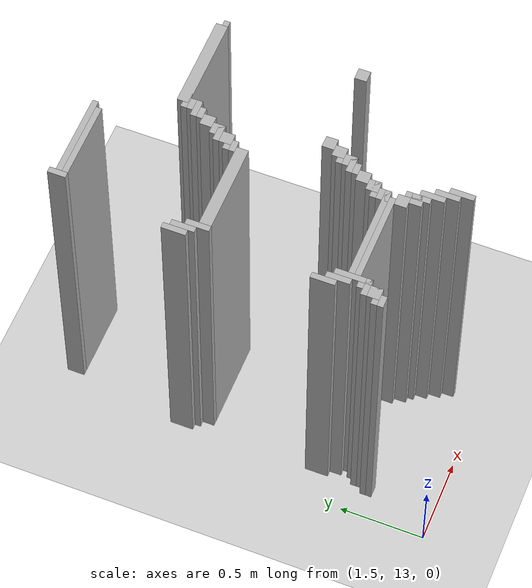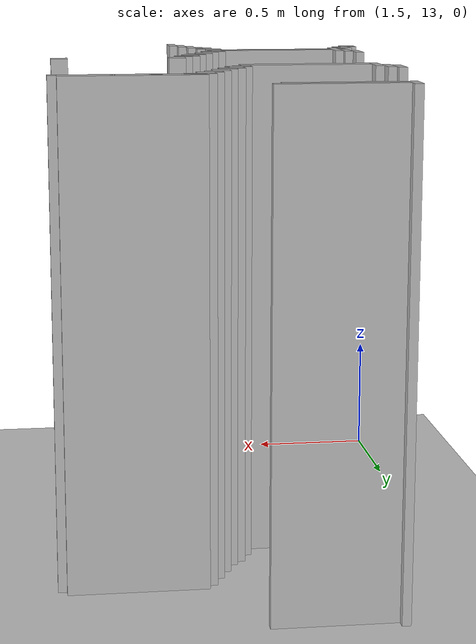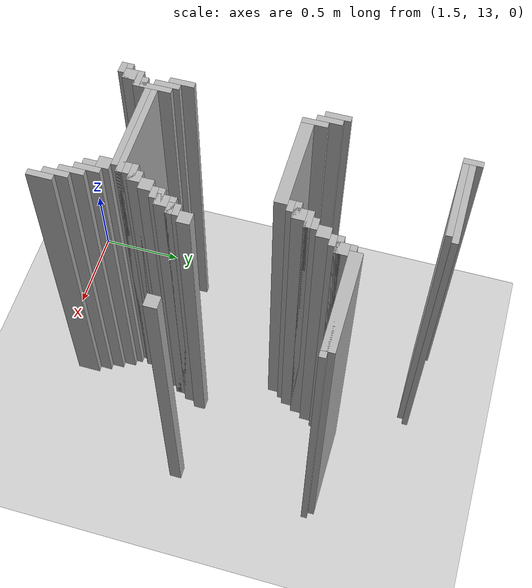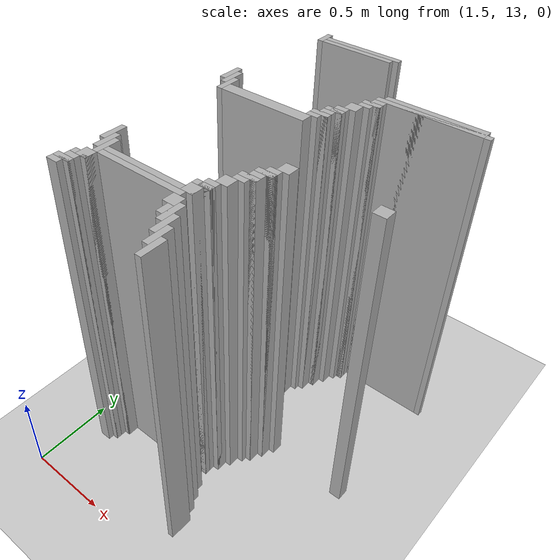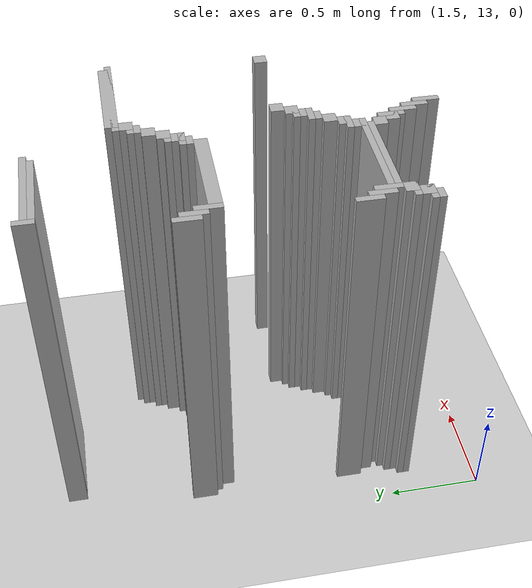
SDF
<sdf version="1.6">
 <world name="slam_world">
  <model name="ground_plane">
   <static>true</static>
   <link name="link">
    <collision name="collision">
     <geometry><plane><normal>0 0 1</normal><size>100 100</size></plane></geometry>
    </collision>
    <visual name="visual">
     <geometry><plane><normal>0 0 1</normal><size>100 100</size></plane></geometry>
     <material>
      <ambient>0.8 0.8 0.8 1</ambient>
      <diffuse>0.8 0.8 0.8 1</diffuse>
      <specular>0.8 0.8 0.8 1</specular>
     </material>
    </visual>
   </link>
  </model>
  <model name="wall_709">
   <static>true</static>
   <pose>1.7923433874709975 15.261020881670532 1.0 0 0 0</pose>
   <link name="link">
    <collision name="collision">
     <geometry><box><size>0.03480278422273782 0.10440835266821345 2.0</size></box></geometry>
    </collision>
    <visual name="visual">
     <geometry><box><size>0.03480278422273782 0.10440835266821345 2.0</size></box></geometry>
     <material><ambient>0.5 0.5 0.5 1</ambient><diffuse>0.7 0.7 0.7 1</diffuse></material>
    </visual>
   </link>
  </model>
  <model name="wall_724">
   <static>true</static>
   <pose>2.053364269141531 15.261020881670532 1.0 0 0 0</pose>
   <link name="link">
    <collision name="collision">
     <geometry><box><size>0.4872389791183295 0.03480278422273782 2.0</size></box></geometry>
    </collision>
    <visual name="visual">
     <geometry><box><size>0.4872389791183295 0.03480278422273782 2.0</size></box></geometry>
     <material><ambient>0.5 0.5 0.5 1</ambient><diffuse>0.7 0.7 0.7 1</diffuse></material>
    </visual>
   </link>
  </model>
  <model name="wall_734">
   <static>true</static>
   <pose>2.0359628770301623 15.226218097447795 1.0 0 0 0</pose>
   <link name="link">
    <collision name="collision">
     <geometry><box><size>0.4524361948955916 0.03480278422273782 2.0</size></box></geometry>
    </collision>
    <visual name="visual">
     <geometry><box><size>0.4524361948955916 0.03480278422273782 2.0</size></box></geometry>
     <material><ambient>0.5 0.5 0.5 1</ambient><diffuse>0.7 0.7 0.7 1</diffuse></material>
    </visual>
   </link>
  </model>
  <model name="wall_858">
   <static>true</static>
   <pose>2.7494199535962878 14.825986078886311 1.0 0 0 0</pose>
   <link name="link">
    <collision name="collision">
     <geometry><box><size>0.5568445475638051 0.06960556844547564 2.0</size></box></geometry>
    </collision>
    <visual name="visual">
     <geometry><box><size>0.5568445475638051 0.06960556844547564 2.0</size></box></geometry>
     <material><ambient>0.5 0.5 0.5 1</ambient><diffuse>0.7 0.7 0.7 1</diffuse></material>
    </visual>
   </link>
  </model>
  <model name="wall_872">
   <static>true</static>
   <pose>2.7494199535962878 14.80858468677494 1.0 0 0 0</pose>
   <link name="link">
    <collision name="collision">
     <geometry><box><size>0.6264501160092807 0.03480278422273782 2.0</size></box></geometry>
    </collision>
    <visual name="visual">
     <geometry><box><size>0.6264501160092807 0.03480278422273782 2.0</size></box></geometry>
     <material><ambient>0.5 0.5 0.5 1</ambient><diffuse>0.7 0.7 0.7 1</diffuse></material>
    </visual>
   </link>
  </model>
  <model name="wall_884">
   <static>true</static>
   <pose>2.470997679814385 14.756380510440835 1.0 0 0 0</pose>
   <link name="link">
    <collision name="collision">
     <geometry><box><size>0.06960556844547564 0.06960556844547564 2.0</size></box></geometry>
    </collision>
    <visual name="visual">
     <geometry><box><size>0.06960556844547564 0.06960556844547564 2.0</size></box></geometry>
     <material><ambient>0.5 0.5 0.5 1</ambient><diffuse>0.7 0.7 0.7 1</diffuse></material>
    </visual>
   </link>
  </model>
  <model name="wall_900">
   <static>true</static>
   <pose>2.453596287703016 14.738979118329466 1.0 0 0 0</pose>
   <link name="link">
    <collision name="collision">
     <geometry><box><size>0.10440835266821345 0.03480278422273782 2.0</size></box></geometry>
    </collision>
    <visual name="visual">
     <geometry><box><size>0.10440835266821345 0.03480278422273782 2.0</size></box></geometry>
     <material><ambient>0.5 0.5 0.5 1</ambient><diffuse>0.7 0.7 0.7 1</diffuse></material>
    </visual>
   </link>
  </model>
  <model name="wall_914">
   <static>true</static>
   <pose>2.436194895591647 14.704176334106728 1.0 0 0 0</pose>
   <link name="link">
    <collision name="collision">
     <geometry><box><size>0.06960556844547564 0.03480278422273782 2.0</size></box></geometry>
    </collision>
    <visual name="visual">
     <geometry><box><size>0.06960556844547564 0.03480278422273782 2.0</size></box></geometry>
     <material><ambient>0.5 0.5 0.5 1</ambient><diffuse>0.7 0.7 0.7 1</diffuse></material>
    </visual>
   </link>
  </model>
  <model name="wall_927">
   <static>true</static>
   <pose>2.4013921113689096 14.65197215777262 1.0 0 0 0</pose>
   <link name="link">
    <collision name="collision">
     <geometry><box><size>0.06960556844547564 0.06960556844547564 2.0</size></box></geometry>
    </collision>
    <visual name="visual">
     <geometry><box><size>0.06960556844547564 0.06960556844547564 2.0</size></box></geometry>
     <material><ambient>0.5 0.5 0.5 1</ambient><diffuse>0.7 0.7 0.7 1</diffuse></material>
    </visual>
   </link>
  </model>
  <model name="wall_942">
   <static>true</static>
   <pose>1.6879350348027842 14.547563805104408 1.0 0 0 0</pose>
   <link name="link">
    <collision name="collision">
     <geometry><box><size>0.03480278422273782 0.13921113689095127 2.0</size></box></geometry>
    </collision>
    <visual name="visual">
     <geometry><box><size>0.03480278422273782 0.13921113689095127 2.0</size></box></geometry>
     <material><ambient>0.5 0.5 0.5 1</ambient><diffuse>0.7 0.7 0.7 1</diffuse></material>
    </visual>
   </link>
  </model>
  <model name="wall_943">
   <static>true</static>
   <pose>2.3665893271461718 14.582366589327146 1.0 0 0 0</pose>
   <link name="link">
    <collision name="collision">
     <geometry><box><size>0.06960556844547564 0.06960556844547564 2.0</size></box></geometry>
    </collision>
    <visual name="visual">
     <geometry><box><size>0.06960556844547564 0.06960556844547564 2.0</size></box></geometry>
     <material><ambient>0.5 0.5 0.5 1</ambient><diffuse>0.7 0.7 0.7 1</diffuse></material>
    </visual>
   </link>
  </model>
  <model name="wall_958">
   <static>true</static>
   <pose>1.722737819025522 14.512761020881669 1.0 0 0 0</pose>
   <link name="link">
    <collision name="collision">
     <geometry><box><size>0.03480278422273782 0.13921113689095127 2.0</size></box></geometry>
    </collision>
    <visual name="visual">
     <geometry><box><size>0.03480278422273782 0.13921113689095127 2.0</size></box></geometry>
     <material><ambient>0.5 0.5 0.5 1</ambient><diffuse>0.7 0.7 0.7 1</diffuse></material>
    </visual>
   </link>
  </model>
  <model name="wall_959">
   <static>true</static>
   <pose>2.3491879350348026 14.564965197215777 1.0 0 0 0</pose>
   <link name="link">
    <collision name="collision">
     <geometry><box><size>0.10440835266821345 0.03480278422273782 2.0</size></box></geometry>
    </collision>
    <visual name="visual">
     <geometry><box><size>0.10440835266821345 0.03480278422273782 2.0</size></box></geometry>
     <material><ambient>0.5 0.5 0.5 1</ambient><diffuse>0.7 0.7 0.7 1</diffuse></material>
    </visual>
   </link>
  </model>
  <model name="wall_973">
   <static>true</static>
   <pose>2.331786542923434 14.512761020881669 1.0 0 0 0</pose>
   <link name="link">
    <collision name="collision">
     <geometry><box><size>0.06960556844547564 0.06960556844547564 2.0</size></box></geometry>
    </collision>
    <visual name="visual">
     <geometry><box><size>0.06960556844547564 0.06960556844547564 2.0</size></box></geometry>
     <material><ambient>0.5 0.5 0.5 1</ambient><diffuse>0.7 0.7 0.7 1</diffuse></material>
    </visual>
   </link>
  </model>
  <model name="wall_981">
   <static>true</static>
   <pose>1.75754060324826 14.443155452436194 1.0 0 0 0</pose>
   <link name="link">
    <collision name="collision">
     <geometry><box><size>0.03480278422273782 0.13921113689095127 2.0</size></box></geometry>
    </collision>
    <visual name="visual">
     <geometry><box><size>0.03480278422273782 0.13921113689095127 2.0</size></box></geometry>
     <material><ambient>0.5 0.5 0.5 1</ambient><diffuse>0.7 0.7 0.7 1</diffuse></material>
    </visual>
   </link>
  </model>
  <model name="wall_982">
   <static>true</static>
   <pose>2.3143851508120648 14.4953596287703 1.0 0 0 0</pose>
   <link name="link">
    <collision name="collision">
     <geometry><box><size>0.10440835266821345 0.03480278422273782 2.0</size></box></geometry>
    </collision>
    <visual name="visual">
     <geometry><box><size>0.10440835266821345 0.03480278422273782 2.0</size></box></geometry>
     <material><ambient>0.5 0.5 0.5 1</ambient><diffuse>0.7 0.7 0.7 1</diffuse></material>
    </visual>
   </link>
  </model>
  <model name="wall_996">
   <static>true</static>
   <pose>2.296983758700696 14.460556844547563 1.0 0 0 0</pose>
   <link name="link">
    <collision name="collision">
     <geometry><box><size>0.06960556844547564 0.03480278422273782 2.0</size></box></geometry>
    </collision>
    <visual name="visual">
     <geometry><box><size>0.06960556844547564 0.03480278422273782 2.0</size></box></geometry>
     <material><ambient>0.5 0.5 0.5 1</ambient><diffuse>0.7 0.7 0.7 1</diffuse></material>
    </visual>
   </link>
  </model>
  <model name="wall_1005">
   <static>true</static>
   <pose>2.0359628770301623 14.408352668213457 1.0 0 0 0</pose>
   <link name="link">
    <collision name="collision">
     <geometry><box><size>0.5220417633410672 0.06960556844547564 2.0</size></box></geometry>
    </collision>
    <visual name="visual">
     <geometry><box><size>0.5220417633410672 0.06960556844547564 2.0</size></box></geometry>
     <material><ambient>0.5 0.5 0.5 1</ambient><diffuse>0.7 0.7 0.7 1</diffuse></material>
    </visual>
   </link>
  </model>
  <model name="wall_1126">
   <static>true</static>
   <pose>2.5058004640371228 13.990719257540603 1.0 0 0 0</pose>
   <link name="link">
    <collision name="collision">
     <geometry><box><size>0.06960556844547564 0.06960556844547564 2.0</size></box></geometry>
    </collision>
    <visual name="visual">
     <geometry><box><size>0.06960556844547564 0.06960556844547564 2.0</size></box></geometry>
     <material><ambient>0.5 0.5 0.5 1</ambient><diffuse>0.7 0.7 0.7 1</diffuse></material>
    </visual>
   </link>
  </model>
  <model name="wall_1127">
   <static>true</static>
   <pose>2.9930394431554523 13.990719257540603 1.0 0 0 0</pose>
   <link name="link">
    <collision name="collision">
     <geometry><box><size>0.06960556844547564 0.06960556844547564 2.0</size></box></geometry>
    </collision>
    <visual name="visual">
     <geometry><box><size>0.06960556844547564 0.06960556844547564 2.0</size></box></geometry>
     <material><ambient>0.5 0.5 0.5 1</ambient><diffuse>0.7 0.7 0.7 1</diffuse></material>
    </visual>
   </link>
  </model>
  <model name="wall_1140">
   <static>true</static>
   <pose>2.470997679814385 13.921113689095128 1.0 0 0 0</pose>
   <link name="link">
    <collision name="collision">
     <geometry><box><size>0.06960556844547564 0.06960556844547564 2.0</size></box></geometry>
    </collision>
    <visual name="visual">
     <geometry><box><size>0.06960556844547564 0.06960556844547564 2.0</size></box></geometry>
     <material><ambient>0.5 0.5 0.5 1</ambient><diffuse>0.7 0.7 0.7 1</diffuse></material>
    </visual>
   </link>
  </model>
  <model name="wall_1157">
   <static>true</static>
   <pose>2.453596287703016 13.903712296983759 1.0 0 0 0</pose>
   <link name="link">
    <collision name="collision">
     <geometry><box><size>0.10440835266821345 0.03480278422273782 2.0</size></box></geometry>
    </collision>
    <visual name="visual">
     <geometry><box><size>0.10440835266821345 0.03480278422273782 2.0</size></box></geometry>
     <material><ambient>0.5 0.5 0.5 1</ambient><diffuse>0.7 0.7 0.7 1</diffuse></material>
    </visual>
   </link>
  </model>
  <model name="wall_1174">
   <static>true</static>
   <pose>2.436194895591647 13.851508120649651 1.0 0 0 0</pose>
   <link name="link">
    <collision name="collision">
     <geometry><box><size>0.06960556844547564 0.06960556844547564 2.0</size></box></geometry>
    </collision>
    <visual name="visual">
     <geometry><box><size>0.06960556844547564 0.06960556844547564 2.0</size></box></geometry>
     <material><ambient>0.5 0.5 0.5 1</ambient><diffuse>0.7 0.7 0.7 1</diffuse></material>
    </visual>
   </link>
  </model>
  <model name="wall_1191">
   <static>true</static>
   <pose>2.4187935034802783 13.834106728538282 1.0 0 0 0</pose>
   <link name="link">
    <collision name="collision">
     <geometry><box><size>0.10440835266821345 0.03480278422273782 2.0</size></box></geometry>
    </collision>
    <visual name="visual">
     <geometry><box><size>0.10440835266821345 0.03480278422273782 2.0</size></box></geometry>
     <material><ambient>0.5 0.5 0.5 1</ambient><diffuse>0.7 0.7 0.7 1</diffuse></material>
    </visual>
   </link>
  </model>
  <model name="wall_1206">
   <static>true</static>
   <pose>2.4013921113689096 13.799303944315545 1.0 0 0 0</pose>
   <link name="link">
    <collision name="collision">
     <geometry><box><size>0.06960556844547564 0.03480278422273782 2.0</size></box></geometry>
    </collision>
    <visual name="visual">
     <geometry><box><size>0.06960556844547564 0.03480278422273782 2.0</size></box></geometry>
     <material><ambient>0.5 0.5 0.5 1</ambient><diffuse>0.7 0.7 0.7 1</diffuse></material>
    </visual>
   </link>
  </model>
  <model name="wall_1213">
   <static>true</static>
   <pose>1.6879350348027842 13.7122969837587 1.0 0 0 0</pose>
   <link name="link">
    <collision name="collision">
     <geometry><box><size>0.03480278422273782 0.13921113689095127 2.0</size></box></geometry>
    </collision>
    <visual name="visual">
     <geometry><box><size>0.03480278422273782 0.13921113689095127 2.0</size></box></geometry>
     <material><ambient>0.5 0.5 0.5 1</ambient><diffuse>0.7 0.7 0.7 1</diffuse></material>
    </visual>
   </link>
  </model>
  <model name="wall_1214">
   <static>true</static>
   <pose>2.3665893271461718 13.747099767981437 1.0 0 0 0</pose>
   <link name="link">
    <collision name="collision">
     <geometry><box><size>0.06960556844547564 0.06960556844547564 2.0</size></box></geometry>
    </collision>
    <visual name="visual">
     <geometry><box><size>0.06960556844547564 0.06960556844547564 2.0</size></box></geometry>
     <material><ambient>0.5 0.5 0.5 1</ambient><diffuse>0.7 0.7 0.7 1</diffuse></material>
    </visual>
   </link>
  </model>
  <model name="wall_1230">
   <static>true</static>
   <pose>1.722737819025522 13.642691415313225 1.0 0 0 0</pose>
   <link name="link">
    <collision name="collision">
     <geometry><box><size>0.03480278422273782 0.13921113689095127 2.0</size></box></geometry>
    </collision>
    <visual name="visual">
     <geometry><box><size>0.03480278422273782 0.13921113689095127 2.0</size></box></geometry>
     <material><ambient>0.5 0.5 0.5 1</ambient><diffuse>0.7 0.7 0.7 1</diffuse></material>
    </visual>
   </link>
  </model>
  <model name="wall_1231">
   <static>true</static>
   <pose>2.331786542923434 13.677494199535962 1.0 0 0 0</pose>
   <link name="link">
    <collision name="collision">
     <geometry><box><size>0.06960556844547564 0.06960556844547564 2.0</size></box></geometry>
    </collision>
    <visual name="visual">
     <geometry><box><size>0.06960556844547564 0.06960556844547564 2.0</size></box></geometry>
     <material><ambient>0.5 0.5 0.5 1</ambient><diffuse>0.7 0.7 0.7 1</diffuse></material>
    </visual>
   </link>
  </model>
  <model name="wall_1247">
   <static>true</static>
   <pose>1.75754060324826 13.573085846867748 1.0 0 0 0</pose>
   <link name="link">
    <collision name="collision">
     <geometry><box><size>0.03480278422273782 0.2088167053364269 2.0</size></box></geometry>
    </collision>
    <visual name="visual">
     <geometry><box><size>0.03480278422273782 0.2088167053364269 2.0</size></box></geometry>
     <material><ambient>0.5 0.5 0.5 1</ambient><diffuse>0.7 0.7 0.7 1</diffuse></material>
    </visual>
   </link>
  </model>
  <model name="wall_1248">
   <static>true</static>
   <pose>2.3143851508120648 13.660092807424594 1.0 0 0 0</pose>
   <link name="link">
    <collision name="collision">
     <geometry><box><size>0.10440835266821345 0.03480278422273782 2.0</size></box></geometry>
    </collision>
    <visual name="visual">
     <geometry><box><size>0.10440835266821345 0.03480278422273782 2.0</size></box></geometry>
     <material><ambient>0.5 0.5 0.5 1</ambient><diffuse>0.7 0.7 0.7 1</diffuse></material>
    </visual>
   </link>
  </model>
  <model name="wall_1263">
   <static>true</static>
   <pose>2.296983758700696 13.607888631090487 1.0 0 0 0</pose>
   <link name="link">
    <collision name="collision">
     <geometry><box><size>0.06960556844547564 0.06960556844547564 2.0</size></box></geometry>
    </collision>
    <visual name="visual">
     <geometry><box><size>0.06960556844547564 0.06960556844547564 2.0</size></box></geometry>
     <material><ambient>0.5 0.5 0.5 1</ambient><diffuse>0.7 0.7 0.7 1</diffuse></material>
    </visual>
   </link>
  </model>
  <model name="wall_1270">
   <static>true</static>
   <pose>2.053364269141531 13.590487238979117 1.0 0 0 0</pose>
   <link name="link">
    <collision name="collision">
     <geometry><box><size>0.5568445475638051 0.03480278422273782 2.0</size></box></geometry>
    </collision>
    <visual name="visual">
     <geometry><box><size>0.5568445475638051 0.03480278422273782 2.0</size></box></geometry>
     <material><ambient>0.5 0.5 0.5 1</ambient><diffuse>0.7 0.7 0.7 1</diffuse></material>
    </visual>
   </link>
  </model>
  <model name="wall_1284">
   <static>true</static>
   <pose>2.0359628770301623 13.55568445475638 1.0 0 0 0</pose>
   <link name="link">
    <collision name="collision">
     <geometry><box><size>0.5220417633410672 0.03480278422273782 2.0</size></box></geometry>
    </collision>
    <visual name="visual">
     <geometry><box><size>0.5220417633410672 0.03480278422273782 2.0</size></box></geometry>
     <material><ambient>0.5 0.5 0.5 1</ambient><diffuse>0.7 0.7 0.7 1</diffuse></material>
    </visual>
   </link>
  </model>
  <model name="wall_1292">
   <static>true</static>
   <pose>1.740139211136891 13.503480278422273 1.0 0 0 0</pose>
   <link name="link">
    <collision name="collision">
     <geometry><box><size>0.06960556844547564 0.06960556844547564 2.0</size></box></geometry>
    </collision>
    <visual name="visual">
     <geometry><box><size>0.06960556844547564 0.06960556844547564 2.0</size></box></geometry>
     <material><ambient>0.5 0.5 0.5 1</ambient><diffuse>0.7 0.7 0.7 1</diffuse></material>
    </visual>
   </link>
  </model>
  <model name="wall_1293">
   <static>true</static>
   <pose>2.296983758700696 13.503480278422273 1.0 0 0 0</pose>
   <link name="link">
    <collision name="collision">
     <geometry><box><size>0.06960556844547564 0.06960556844547564 2.0</size></box></geometry>
    </collision>
    <visual name="visual">
     <geometry><box><size>0.06960556844547564 0.06960556844547564 2.0</size></box></geometry>
     <material><ambient>0.5 0.5 0.5 1</ambient><diffuse>0.7 0.7 0.7 1</diffuse></material>
    </visual>
   </link>
  </model>
  <model name="wall_1306">
   <static>true</static>
   <pose>1.722737819025522 13.486078886310905 1.0 0 0 0</pose>
   <link name="link">
    <collision name="collision">
     <geometry><box><size>0.10440835266821345 0.03480278422273782 2.0</size></box></geometry>
    </collision>
    <visual name="visual">
     <geometry><box><size>0.10440835266821345 0.03480278422273782 2.0</size></box></geometry>
     <material><ambient>0.5 0.5 0.5 1</ambient><diffuse>0.7 0.7 0.7 1</diffuse></material>
    </visual>
   </link>
  </model>
  <model name="wall_1307">
   <static>true</static>
   <pose>2.3491879350348026 13.433874709976797 1.0 0 0 0</pose>
   <link name="link">
    <collision name="collision">
     <geometry><box><size>0.03480278422273782 0.13921113689095127 2.0</size></box></geometry>
    </collision>
    <visual name="visual">
     <geometry><box><size>0.03480278422273782 0.13921113689095127 2.0</size></box></geometry>
     <material><ambient>0.5 0.5 0.5 1</ambient><diffuse>0.7 0.7 0.7 1</diffuse></material>
    </visual>
   </link>
  </model>
  <model name="wall_1320">
   <static>true</static>
   <pose>1.705336426914153 13.433874709976797 1.0 0 0 0</pose>
   <link name="link">
    <collision name="collision">
     <geometry><box><size>0.06960556844547564 0.06960556844547564 2.0</size></box></geometry>
    </collision>
    <visual name="visual">
     <geometry><box><size>0.06960556844547564 0.06960556844547564 2.0</size></box></geometry>
     <material><ambient>0.5 0.5 0.5 1</ambient><diffuse>0.7 0.7 0.7 1</diffuse></material>
    </visual>
   </link>
  </model>
  <model name="wall_1321">
   <static>true</static>
   <pose>2.331786542923434 13.433874709976797 1.0 0 0 0</pose>
   <link name="link">
    <collision name="collision">
     <geometry><box><size>0.06960556844547564 0.06960556844547564 2.0</size></box></geometry>
    </collision>
    <visual name="visual">
     <geometry><box><size>0.06960556844547564 0.06960556844547564 2.0</size></box></geometry>
     <material><ambient>0.5 0.5 0.5 1</ambient><diffuse>0.7 0.7 0.7 1</diffuse></material>
    </visual>
   </link>
  </model>
  <model name="wall_1334">
   <static>true</static>
   <pose>1.6879350348027842 13.416473317865428 1.0 0 0 0</pose>
   <link name="link">
    <collision name="collision">
     <geometry><box><size>0.10440835266821345 0.03480278422273782 2.0</size></box></geometry>
    </collision>
    <visual name="visual">
     <geometry><box><size>0.10440835266821345 0.03480278422273782 2.0</size></box></geometry>
     <material><ambient>0.5 0.5 0.5 1</ambient><diffuse>0.7 0.7 0.7 1</diffuse></material>
    </visual>
   </link>
  </model>
  <model name="wall_1335">
   <static>true</static>
   <pose>2.3839907192575405 13.364269141531322 1.0 0 0 0</pose>
   <link name="link">
    <collision name="collision">
     <geometry><box><size>0.03480278422273782 0.13921113689095127 2.0</size></box></geometry>
    </collision>
    <visual name="visual">
     <geometry><box><size>0.03480278422273782 0.13921113689095127 2.0</size></box></geometry>
     <material><ambient>0.5 0.5 0.5 1</ambient><diffuse>0.7 0.7 0.7 1</diffuse></material>
    </visual>
   </link>
  </model>
  <model name="wall_1347">
   <static>true</static>
   <pose>1.6705336426914152 13.38167053364269 1.0 0 0 0</pose>
   <link name="link">
    <collision name="collision">
     <geometry><box><size>0.06960556844547564 0.03480278422273782 2.0</size></box></geometry>
    </collision>
    <visual name="visual">
     <geometry><box><size>0.06960556844547564 0.03480278422273782 2.0</size></box></geometry>
     <material><ambient>0.5 0.5 0.5 1</ambient><diffuse>0.7 0.7 0.7 1</diffuse></material>
    </visual>
   </link>
  </model>
  <model name="wall_1356">
   <static>true</static>
   <pose>2.4187935034802783 13.294663573085847 1.0 0 0 0</pose>
   <link name="link">
    <collision name="collision">
     <geometry><box><size>0.03480278422273782 0.13921113689095127 2.0</size></box></geometry>
    </collision>
    <visual name="visual">
     <geometry><box><size>0.03480278422273782 0.13921113689095127 2.0</size></box></geometry>
     <material><ambient>0.5 0.5 0.5 1</ambient><diffuse>0.7 0.7 0.7 1</diffuse></material>
    </visual>
   </link>
  </model>
  <model name="wall_1370">
   <static>true</static>
   <pose>2.453596287703016 13.22505800464037 1.0 0 0 0</pose>
   <link name="link">
    <collision name="collision">
     <geometry><box><size>0.03480278422273782 0.13921113689095127 2.0</size></box></geometry>
    </collision>
    <visual name="visual">
     <geometry><box><size>0.03480278422273782 0.13921113689095127 2.0</size></box></geometry>
     <material><ambient>0.5 0.5 0.5 1</ambient><diffuse>0.7 0.7 0.7 1</diffuse></material>
    </visual>
   </link>
  </model>
 </world>
</sdf>
